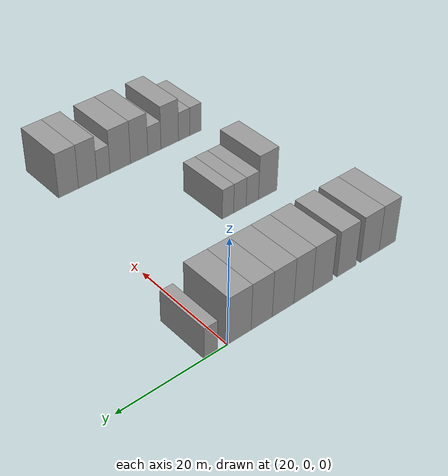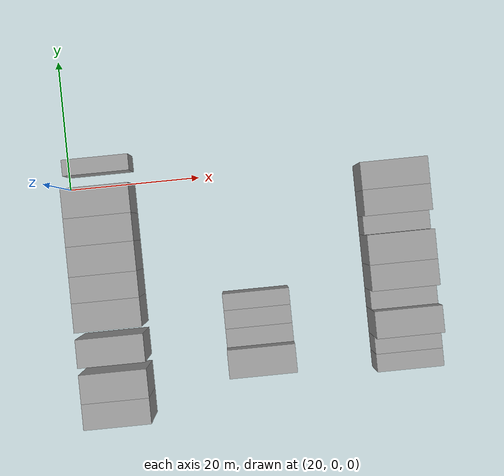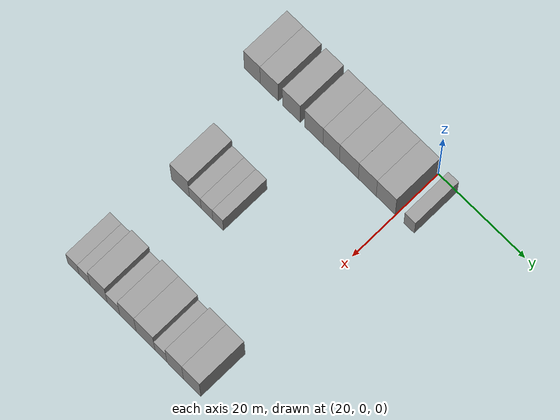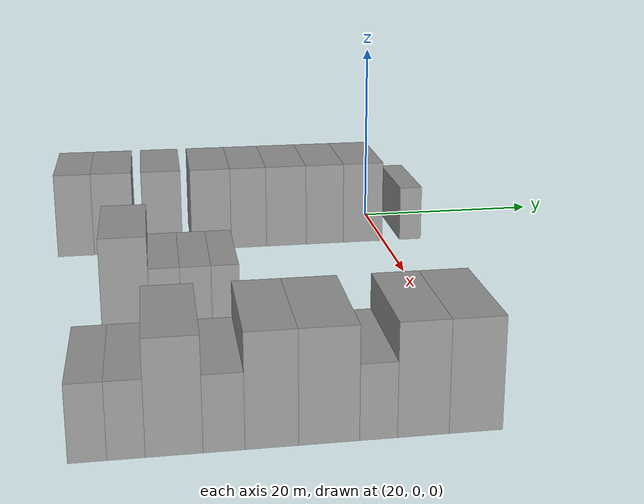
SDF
<sdf version="1.6">
 <world name="default">
  <model name="building_47">
   <static>1</static>
   <pose>25.0000 -33.7285 0 0.000000 0.000000 0.000000</pose>
   <link name="link">
    <pose>0 0 4.50 0 0 0</pose>
    <collision name="collision"><geometry><box><size>10.0000 3.8191 9.0000</size></box></geometry></collision>
    <visual name="visual">
     <cast_shadows>0</cast_shadows>
     <geometry><box><size>10.0000 3.8191 9.0000</size></box></geometry>
     <material>
      <script>
       <uri>model://grey_wall/materials/scripts</uri>
       <uri>model://grey_wall/materials/textures</uri>
       <name>vrc/grey_wall</name>
      </script>
     </material>
    </visual>
   </link>
  </model>
  <model name="building_48">
   <static>1</static>
   <pose>25.0000 -29.6810 0 0.000000 0.000000 0.000000</pose>
   <link name="link">
    <pose>0 0 4.50 0 0 0</pose>
    <collision name="collision"><geometry><box><size>10.0000 4.2759 9.0000</size></box></geometry></collision>
    <visual name="visual">
     <cast_shadows>0</cast_shadows>
     <geometry><box><size>10.0000 4.2759 9.0000</size></box></geometry>
     <material>
      <script>
       <uri>model://grey_wall/materials/scripts</uri>
       <uri>model://grey_wall/materials/textures</uri>
       <name>vrc/grey_wall</name>
      </script>
     </material>
    </visual>
   </link>
  </model>
  <model name="building_49">
   <static>1</static>
   <pose>25.0000 -24.4441 0 0.000000 0.000000 0.000000</pose>
   <link name="link">
    <pose>0 0 4.50 0 0 0</pose>
    <collision name="collision"><geometry><box><size>10.0000 4.1980 9.0000</size></box></geometry></collision>
    <visual name="visual">
     <cast_shadows>0</cast_shadows>
     <geometry><box><size>10.0000 4.1980 9.0000</size></box></geometry>
     <material>
      <script>
       <uri>model://grey_wall/materials/scripts</uri>
       <uri>model://grey_wall/materials/textures</uri>
       <name>vrc/grey_wall</name>
      </script>
     </material>
    </visual>
   </link>
  </model>
  <model name="building_50">
   <static>1</static>
   <pose>25.0000 -19.1880 0 0.000000 0.000000 0.000000</pose>
   <link name="link">
    <pose>0 0 4.50 0 0 0</pose>
    <collision name="collision"><geometry><box><size>10.0000 4.3142 9.0000</size></box></geometry></collision>
    <visual name="visual">
     <cast_shadows>0</cast_shadows>
     <geometry><box><size>10.0000 4.3142 9.0000</size></box></geometry>
     <material>
      <script>
       <uri>model://grey_wall/materials/scripts</uri>
       <uri>model://grey_wall/materials/textures</uri>
       <name>vrc/grey_wall</name>
      </script>
     </material>
    </visual>
   </link>
  </model>
  <model name="building_51">
   <static>1</static>
   <pose>25.0000 -15.0882 0 0.000000 0.000000 0.000000</pose>
   <link name="link">
    <pose>0 0 4.50 0 0 0</pose>
    <collision name="collision"><geometry><box><size>10.0000 3.8855 9.0000</size></box></geometry></collision>
    <visual name="visual">
     <cast_shadows>0</cast_shadows>
     <geometry><box><size>10.0000 3.8855 9.0000</size></box></geometry>
     <material>
      <script>
       <uri>model://grey_wall/materials/scripts</uri>
       <uri>model://grey_wall/materials/textures</uri>
       <name>vrc/grey_wall</name>
      </script>
     </material>
    </visual>
   </link>
  </model>
  <model name="building_52">
   <static>1</static>
   <pose>25.0000 -10.9371 0 0.000000 0.000000 0.000000</pose>
   <link name="link">
    <pose>0 0 4.50 0 0 0</pose>
    <collision name="collision"><geometry><box><size>10.0000 4.4168 9.0000</size></box></geometry></collision>
    <visual name="visual">
     <cast_shadows>0</cast_shadows>
     <geometry><box><size>10.0000 4.4168 9.0000</size></box></geometry>
     <material>
      <script>
       <uri>model://grey_wall/materials/scripts</uri>
       <uri>model://grey_wall/materials/textures</uri>
       <name>vrc/grey_wall</name>
      </script>
     </material>
    </visual>
   </link>
  </model>
  <model name="building_53">
   <static>1</static>
   <pose>25.0000 -6.6403 0 0.000000 0.000000 0.000000</pose>
   <link name="link">
    <pose>0 0 4.50 0 0 0</pose>
    <collision name="collision"><geometry><box><size>10.0000 4.1767 9.0000</size></box></geometry></collision>
    <visual name="visual">
     <cast_shadows>0</cast_shadows>
     <geometry><box><size>10.0000 4.1767 9.0000</size></box></geometry>
     <material>
      <script>
       <uri>model://grey_wall/materials/scripts</uri>
       <uri>model://grey_wall/materials/textures</uri>
       <name>vrc/grey_wall</name>
      </script>
     </material>
    </visual>
   </link>
  </model>
  <model name="building_54">
   <static>1</static>
   <pose>25.0000 -2.3308 0 0.000000 0.000000 0.000000</pose>
   <link name="link">
    <pose>0 0 4.50 0 0 0</pose>
    <collision name="collision"><geometry><box><size>10.0000 4.4424 9.0000</size></box></geometry></collision>
    <visual name="visual">
     <cast_shadows>0</cast_shadows>
     <geometry><box><size>10.0000 4.4424 9.0000</size></box></geometry>
     <material>
      <script>
       <uri>model://grey_wall/materials/scripts</uri>
       <uri>model://grey_wall/materials/textures</uri>
       <name>vrc/grey_wall</name>
      </script>
     </material>
    </visual>
   </link>
  </model>
  <model name="building_55">
   <static>1</static>
   <pose>25.0000 3.1088 0 0.000000 0.000000 0.000000</pose>
   <link name="link">
    <pose>0 0 3.00 0 0 0</pose>
    <collision name="collision"><geometry><box><size>10.0000 2.4368 6.0000</size></box></geometry></collision>
    <visual name="visual">
     <cast_shadows>0</cast_shadows>
     <geometry><box><size>10.0000 2.4368 6.0000</size></box></geometry>
     <material>
      <script>
       <uri>model://grey_wall/materials/scripts</uri>
       <uri>model://grey_wall/materials/textures</uri>
       <name>vrc/grey_wall</name>
      </script>
     </material>
    </visual>
   </link>
  </model>
  <model name="building_169">
   <static>1</static>
   <pose>47.0000 -28.1385 0 0.000000 0.000000 0.000000</pose>
   <link name="link">
    <pose>0 0 4.50 0 0 0</pose>
    <collision name="collision"><geometry><box><size>10.0000 4.2236 9.0000</size></box></geometry></collision>
    <visual name="visual">
     <cast_shadows>0</cast_shadows>
     <geometry><box><size>10.0000 4.2236 9.0000</size></box></geometry>
     <material>
      <script>
       <uri>model://grey_wall/materials/scripts</uri>
       <uri>model://grey_wall/materials/textures</uri>
       <name>vrc/grey_wall</name>
      </script>
     </material>
    </visual>
   </link>
  </model>
  <model name="building_170">
   <static>1</static>
   <pose>47.0000 -24.6388 0 0.000000 0.000000 0.000000</pose>
   <link name="link">
    <pose>0 0 3.00 0 0 0</pose>
    <collision name="collision"><geometry><box><size>10.0000 2.7757 6.0000</size></box></geometry></collision>
    <visual name="visual">
     <cast_shadows>0</cast_shadows>
     <geometry><box><size>10.0000 2.7757 6.0000</size></box></geometry>
     <material>
      <script>
       <uri>model://grey_wall/materials/scripts</uri>
       <uri>model://grey_wall/materials/textures</uri>
       <name>vrc/grey_wall</name>
      </script>
     </material>
    </visual>
   </link>
  </model>
  <model name="building_171">
   <static>1</static>
   <pose>47.0000 -21.8657 0 0.000000 0.000000 0.000000</pose>
   <link name="link">
    <pose>0 0 3.00 0 0 0</pose>
    <collision name="collision"><geometry><box><size>10.0000 2.7704 6.0000</size></box></geometry></collision>
    <visual name="visual">
     <cast_shadows>0</cast_shadows>
     <geometry><box><size>10.0000 2.7704 6.0000</size></box></geometry>
     <material>
      <script>
       <uri>model://grey_wall/materials/scripts</uri>
       <uri>model://grey_wall/materials/textures</uri>
       <name>vrc/grey_wall</name>
      </script>
     </material>
    </visual>
   </link>
  </model>
  <model name="building_172">
   <static>1</static>
   <pose>47.0000 -19.2337 0 0.000000 0.000000 0.000000</pose>
   <link name="link">
    <pose>0 0 3.00 0 0 0</pose>
    <collision name="collision"><geometry><box><size>10.0000 2.4936 6.0000</size></box></geometry></collision>
    <visual name="visual">
     <cast_shadows>0</cast_shadows>
     <geometry><box><size>10.0000 2.4936 6.0000</size></box></geometry>
     <material>
      <script>
       <uri>model://grey_wall/materials/scripts</uri>
       <uri>model://grey_wall/materials/textures</uri>
       <name>vrc/grey_wall</name>
      </script>
     </material>
    </visual>
   </link>
  </model>
  <model name="building_293">
   <static>1</static>
   <pose>69.0000 -30.5435 0 0.000000 0.000000 0.000000</pose>
   <link name="link">
    <pose>0 0 3.00 0 0 0</pose>
    <collision name="collision"><geometry><box><size>10.0000 2.6748 6.0000</size></box></geometry></collision>
    <visual name="visual">
     <cast_shadows>0</cast_shadows>
     <geometry><box><size>10.0000 2.6748 6.0000</size></box></geometry>
     <material>
      <script>
       <uri>model://grey_wall/materials/scripts</uri>
       <uri>model://grey_wall/materials/textures</uri>
       <name>vrc/grey_wall</name>
      </script>
     </material>
    </visual>
   </link>
  </model>
  <model name="building_294">
   <static>1</static>
   <pose>69.0000 -27.8806 0 0.000000 0.000000 0.000000</pose>
   <link name="link">
    <pose>0 0 3.00 0 0 0</pose>
    <collision name="collision"><geometry><box><size>10.0000 2.6509 6.0000</size></box></geometry></collision>
    <visual name="visual">
     <cast_shadows>0</cast_shadows>
     <geometry><box><size>10.0000 2.6509 6.0000</size></box></geometry>
     <material>
      <script>
       <uri>model://grey_wall/materials/scripts</uri>
       <uri>model://grey_wall/materials/textures</uri>
       <name>vrc/grey_wall</name>
      </script>
     </material>
    </visual>
   </link>
  </model>
  <model name="building_295">
   <static>1</static>
   <pose>69.0000 -24.5426 0 0.000000 0.000000 0.000000</pose>
   <link name="link">
    <pose>0 0 4.50 0 0 0</pose>
    <collision name="collision"><geometry><box><size>10.0000 4.0251 9.0000</size></box></geometry></collision>
    <visual name="visual">
     <cast_shadows>0</cast_shadows>
     <geometry><box><size>10.0000 4.0251 9.0000</size></box></geometry>
     <material>
      <script>
       <uri>model://grey_wall/materials/scripts</uri>
       <uri>model://grey_wall/materials/textures</uri>
       <name>vrc/grey_wall</name>
      </script>
     </material>
    </visual>
   </link>
  </model>
  <model name="building_296">
   <static>1</static>
   <pose>69.0000 -21.0480 0 0.000000 0.000000 0.000000</pose>
   <link name="link">
    <pose>0 0 3.00 0 0 0</pose>
    <collision name="collision"><geometry><box><size>10.0000 2.9642 6.0000</size></box></geometry></collision>
    <visual name="visual">
     <cast_shadows>0</cast_shadows>
     <geometry><box><size>10.0000 2.9642 6.0000</size></box></geometry>
     <material>
      <script>
       <uri>model://grey_wall/materials/scripts</uri>
       <uri>model://grey_wall/materials/textures</uri>
       <name>vrc/grey_wall</name>
      </script>
     </material>
    </visual>
   </link>
  </model>
  <model name="building_297">
   <static>1</static>
   <pose>69.0000 -17.6442 0 0.000000 0.000000 0.000000</pose>
   <link name="link">
    <pose>0 0 4.50 0 0 0</pose>
    <collision name="collision"><geometry><box><size>10.0000 3.8434 9.0000</size></box></geometry></collision>
    <visual name="visual">
     <cast_shadows>0</cast_shadows>
     <geometry><box><size>10.0000 3.8434 9.0000</size></box></geometry>
     <material>
      <script>
       <uri>model://grey_wall/materials/scripts</uri>
       <uri>model://grey_wall/materials/textures</uri>
       <name>vrc/grey_wall</name>
      </script>
     </material>
    </visual>
   </link>
  </model>
  <model name="building_298">
   <static>1</static>
   <pose>69.0000 -13.5070 0 0.000000 0.000000 0.000000</pose>
   <link name="link">
    <pose>0 0 4.50 0 0 0</pose>
    <collision name="collision"><geometry><box><size>10.0000 4.4310 9.0000</size></box></geometry></collision>
    <visual name="visual">
     <cast_shadows>0</cast_shadows>
     <geometry><box><size>10.0000 4.4310 9.0000</size></box></geometry>
     <material>
      <script>
       <uri>model://grey_wall/materials/scripts</uri>
       <uri>model://grey_wall/materials/textures</uri>
       <name>vrc/grey_wall</name>
      </script>
     </material>
    </visual>
   </link>
  </model>
  <model name="building_299">
   <static>1</static>
   <pose>69.0000 -9.8948 0 0.000000 0.000000 0.000000</pose>
   <link name="link">
    <pose>0 0 3.00 0 0 0</pose>
    <collision name="collision"><geometry><box><size>10.0000 2.7933 6.0000</size></box></geometry></collision>
    <visual name="visual">
     <cast_shadows>0</cast_shadows>
     <geometry><box><size>10.0000 2.7933 6.0000</size></box></geometry>
     <material>
      <script>
       <uri>model://grey_wall/materials/scripts</uri>
       <uri>model://grey_wall/materials/textures</uri>
       <name>vrc/grey_wall</name>
      </script>
     </material>
    </visual>
   </link>
  </model>
  <model name="building_300">
   <static>1</static>
   <pose>69.0000 -6.5753 0 0.000000 0.000000 0.000000</pose>
   <link name="link">
    <pose>0 0 4.50 0 0 0</pose>
    <collision name="collision"><geometry><box><size>10.0000 3.8457 9.0000</size></box></geometry></collision>
    <visual name="visual">
     <cast_shadows>0</cast_shadows>
     <geometry><box><size>10.0000 3.8457 9.0000</size></box></geometry>
     <material>
      <script>
       <uri>model://grey_wall/materials/scripts</uri>
       <uri>model://grey_wall/materials/textures</uri>
       <name>vrc/grey_wall</name>
      </script>
     </material>
    </visual>
   </link>
  </model>
  <model name="building_301">
   <static>1</static>
   <pose>69.0000 -2.6194 0 0.000000 0.000000 0.000000</pose>
   <link name="link">
    <pose>0 0 4.50 0 0 0</pose>
    <collision name="collision"><geometry><box><size>10.0000 4.0661 9.0000</size></box></geometry></collision>
    <visual name="visual">
     <cast_shadows>0</cast_shadows>
     <geometry><box><size>10.0000 4.0661 9.0000</size></box></geometry>
     <material>
      <script>
       <uri>model://grey_wall/materials/scripts</uri>
       <uri>model://grey_wall/materials/textures</uri>
       <name>vrc/grey_wall</name>
      </script>
     </material>
    </visual>
   </link>
  </model>
 </world>
</sdf>
